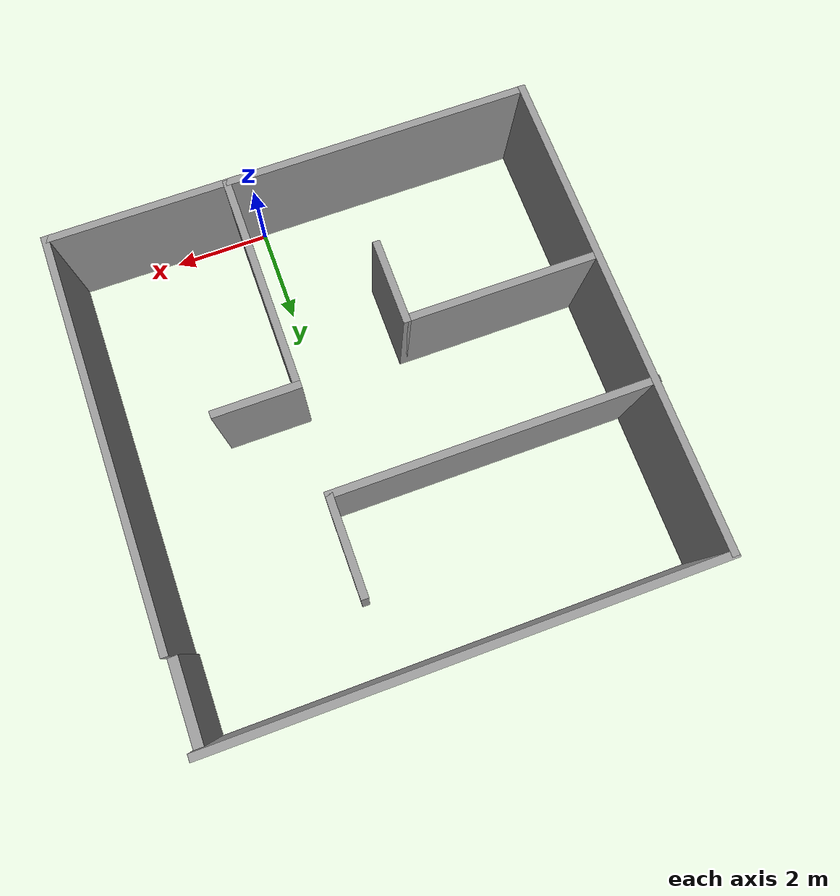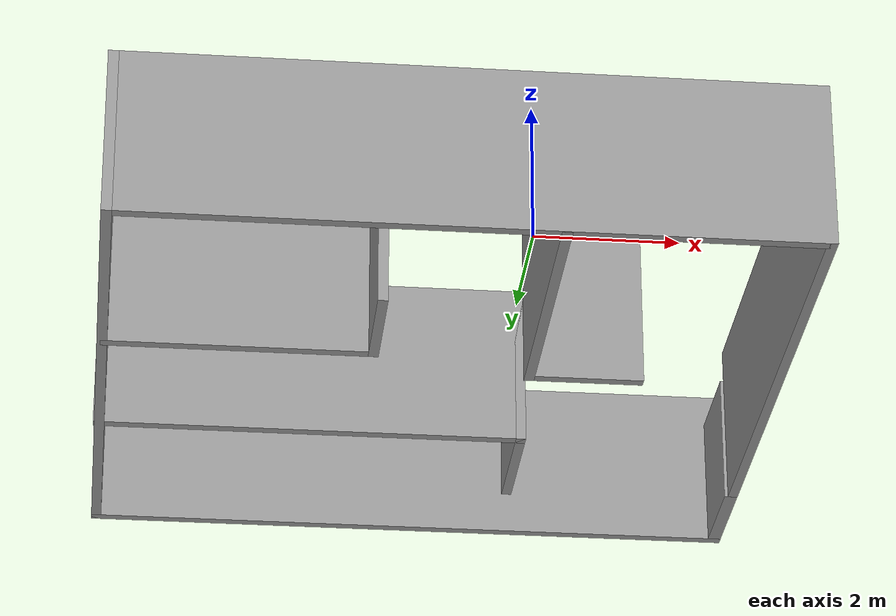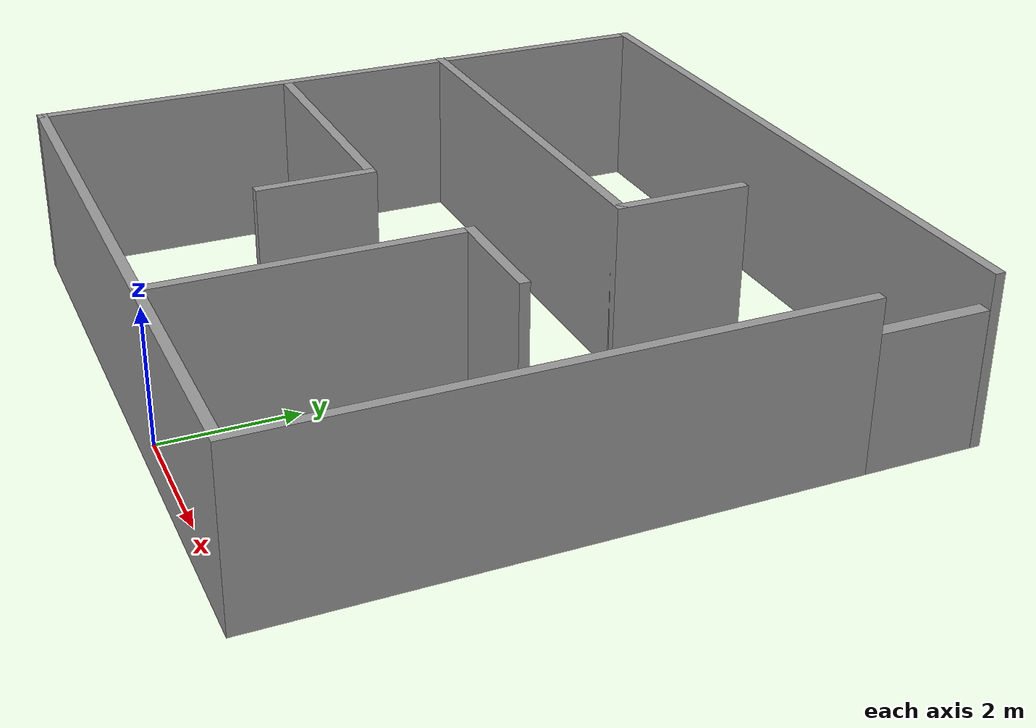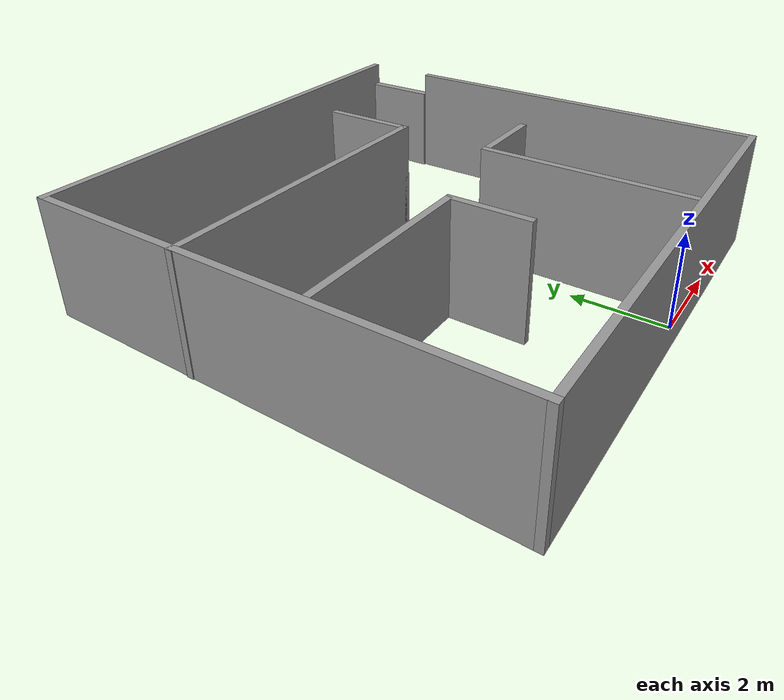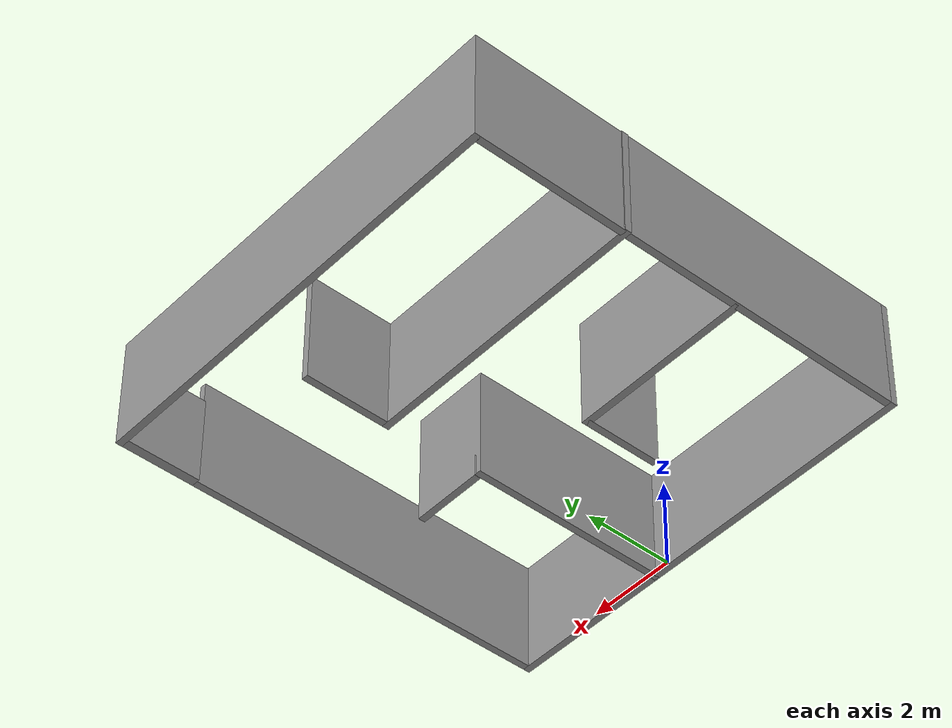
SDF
<?xml version='1.0'?>
<sdf version='1.7'>
  <model name='simple_maze'>
    <pose>-0.848102 4.80826 0 0 -0 0</pose>
    <link name='Door_1'>
      <collision name='Door_1_Collision'>
        <geometry>
          <box>
            <size>1.6084 0.2 2</size>
          </box>
        </geometry>
        <pose>0 0 1 0 -0 0</pose>
      </collision>
      <visual name='Door_1_Visual'>
        <pose>0 0 1 0 -0 0</pose>
        <geometry>
          <box>
            <size>1.6084 0.2 2</size>
          </box>
        </geometry>
        <material>
          <script>
            <uri>file://media/materials/scripts/gazebo.material</uri>
            <name>Gazebo/Grey</name>
          </script>
        </material>
      </visual>
      <pose>4.90763 4.04933 0 0 -0 1.5714</pose>
    </link>
    <link name='Wall_0'>
      <collision name='Wall_0_Collision'>
        <geometry>
          <box>
            <size>10 0.15 2.5</size>
          </box>
        </geometry>
        <pose>0 0 1.25 0 -0 0</pose>
      </collision>
      <visual name='Wall_0_Visual'>
        <pose>0 0 1.25 0 -0 0</pose>
        <geometry>
          <box>
            <size>10 0.15 2.5</size>
          </box>
        </geometry>
        <material>
          <script>
            <uri>file://media/materials/scripts/gazebo.material</uri>
            <name>Gazebo/Grey</name>
          </script>
          <ambient>1 1 1 1</ambient>
        </material>
        <meta>
          <layer>0</layer>
        </meta>
      </visual>
      <pose>-4.91575 0 0 0 -0 1.5708</pose>
    </link>
    <link name='Wall_10'>
      <collision name='Wall_10_Collision'>
        <geometry>
          <box>
            <size>4.5 0.15 2.5</size>
          </box>
        </geometry>
        <pose>0 0 1.25 0 -0 0</pose>
      </collision>
      <visual name='Wall_10_Visual'>
        <pose>0 0 1.25 0 -0 0</pose>
        <geometry>
          <box>
            <size>4.5 0.15 2.5</size>
          </box>
        </geometry>
        <material>
          <script>
            <uri>file://media/materials/scripts/gazebo.material</uri>
            <name>Gazebo/Grey</name>
          </script>
          <ambient>1 1 1 1</ambient>
        </material>
        <meta>
          <layer>0</layer>
        </meta>
      </visual>
      <pose>1.30151 -2.72399 0 0 -0 1.5708</pose>
    </link>
    <link name='Wall_2'>
      <collision name='Wall_2_Collision'>
        <geometry>
          <box>
            <size>10 0.15 2.5</size>
          </box>
        </geometry>
        <pose>0 0 1.25 0 -0 0</pose>
      </collision>
      <visual name='Wall_2_Visual'>
        <pose>0 0 1.25 0 -0 0</pose>
        <geometry>
          <box>
            <size>10 0.15 2.5</size>
          </box>
        </geometry>
        <material>
          <script>
            <uri>file://media/materials/scripts/gazebo.material</uri>
            <name>Gazebo/Grey</name>
          </script>
          <ambient>1 1 1 1</ambient>
        </material>
        <meta>
          <layer>0</layer>
        </meta>
      </visual>
      <pose>0.009245 -4.925 0 0 -0 3.14159</pose>
    </link>
    <link name='Wall_31'>
      <collision name='Wall_31_Collision'>
        <geometry>
          <box>
            <size>1.75 0.15 2.5</size>
          </box>
        </geometry>
        <pose>0 0 1.25 0 -0 0</pose>
      </collision>
      <visual name='Wall_31_Visual'>
        <pose>0 0 1.25 0 -0 0</pose>
        <geometry>
          <box>
            <size>1.75 0.15 2.5</size>
          </box>
        </geometry>
        <material>
          <script>
            <uri>file://media/materials/scripts/gazebo.material</uri>
            <name>Gazebo/Grey</name>
          </script>
          <ambient>1 1 1 1</ambient>
        </material>
        <meta>
          <layer>0</layer>
        </meta>
      </visual>
      <pose>-1.02019 -1.8979 0 0 -0 -1.5708</pose>
    </link>
    <link name='Wall_33'>
      <collision name='Wall_33_Collision'>
        <geometry>
          <box>
            <size>6.5 0.15 2.5</size>
          </box>
        </geometry>
        <pose>0 0 1.25 0 -0 0</pose>
      </collision>
      <visual name='Wall_33_Visual'>
        <pose>0 0 1.25 0 -0 0</pose>
        <geometry>
          <box>
            <size>6.5 0.15 2.5</size>
          </box>
        </geometry>
        <material>
          <script>
            <uri>file://media/materials/scripts/gazebo.material</uri>
            <name>Gazebo/Grey</name>
          </script>
          <ambient>1 1 1 1</ambient>
        </material>
        <meta>
          <layer>0</layer>
        </meta>
      </visual>
      <pose>-1.75924 1.55908 0 0 -0 0</pose>
    </link>
    <link name='Wall_34'>
      <collision name='Wall_34_Collision'>
        <geometry>
          <box>
            <size>2 0.15 2.5</size>
          </box>
        </geometry>
        <pose>0 0 1.25 0 -0 0</pose>
      </collision>
      <visual name='Wall_34_Visual'>
        <pose>0 0 1.25 0 -0 0</pose>
        <geometry>
          <box>
            <size>2 0.15 2.5</size>
          </box>
        </geometry>
        <material>
          <script>
            <uri>file://media/materials/scripts/gazebo.material</uri>
            <name>Gazebo/Grey</name>
          </script>
          <ambient>1 1 1 1</ambient>
        </material>
        <meta>
          <layer>0</layer>
        </meta>
      </visual>
      <pose>1.41576 2.48408 0 0 -0 1.5708</pose>
    </link>
    <link name='Wall_36'>
      <collision name='Wall_36_Collision'>
        <geometry>
          <box>
            <size>1.75 0.15 2.5</size>
          </box>
        </geometry>
        <pose>0 0 1.25 0 -0 0</pose>
      </collision>
      <visual name='Wall_36_Visual'>
        <pose>0 0 1.25 0 -0 0</pose>
        <geometry>
          <box>
            <size>1.75 0.15 2.5</size>
          </box>
        </geometry>
        <material>
          <script>
            <uri>file://media/materials/scripts/gazebo.material</uri>
            <name>Gazebo/Grey</name>
          </script>
          <ambient>1 1 1 1</ambient>
        </material>
        <meta>
          <layer>0</layer>
        </meta>
      </visual>
      <pose>2.10151 -0.548988 0 0 -0 0</pose>
    </link>
    <link name='Wall_38'>
      <collision name='Wall_38_Collision'>
        <geometry>
          <box>
            <size>8.25 0.15 2.5</size>
          </box>
        </geometry>
        <pose>0 0 1.25 0 -0 0</pose>
      </collision>
      <visual name='Wall_38_Visual'>
        <pose>0 0 1.25 0 -0 0</pose>
        <geometry>
          <box>
            <size>8.25 0.15 2.5</size>
          </box>
        </geometry>
        <material>
          <script>
            <uri>file://media/materials/scripts/gazebo.material</uri>
            <name>Gazebo/Grey</name>
          </script>
          <ambient>1 1 1 1</ambient>
        </material>
        <meta>
          <layer>0</layer>
        </meta>
      </visual>
      <pose>4.93424 -0.875 0 0 -0 1.5708</pose>
    </link>
    <link name='Wall_5'>
      <collision name='Wall_5_Collision'>
        <geometry>
          <box>
            <size>10 0.15 2.5</size>
          </box>
        </geometry>
        <pose>0 0 1.25 0 -0 0</pose>
      </collision>
      <visual name='Wall_5_Visual'>
        <pose>0 0 1.25 0 -0 0</pose>
        <geometry>
          <box>
            <size>10 0.15 2.5</size>
          </box>
        </geometry>
        <material>
          <script>
            <uri>file://media/materials/scripts/gazebo.material</uri>
            <name>Gazebo/Grey</name>
          </script>
          <ambient>1 1 1 1</ambient>
        </material>
        <meta>
          <layer>0</layer>
        </meta>
      </visual>
      <pose>0.009245 4.925 0 0 -0 3.14159</pose>
    </link>
    <link name='Wall_7'>
      <collision name='Wall_7_Collision'>
        <geometry>
          <box>
            <size>4 0.15 2.5</size>
          </box>
        </geometry>
        <pose>0 0 1.25 0 -0 0</pose>
      </collision>
      <visual name='Wall_7_Visual'>
        <pose>0 0 1.25 0 -0 0</pose>
        <geometry>
          <box>
            <size>4 0.15 2.5</size>
          </box>
        </geometry>
        <material>
          <script>
            <uri>file://media/materials/scripts/gazebo.material</uri>
            <name>Gazebo/Grey</name>
          </script>
          <ambient>1 1 1 1</ambient>
        </material>
        <meta>
          <layer>0</layer>
        </meta>
      </visual>
      <pose>-2.94519 -1.0979 0 0 -0 0</pose>
    </link>
    <static>1</static>
  </model>
</sdf>
